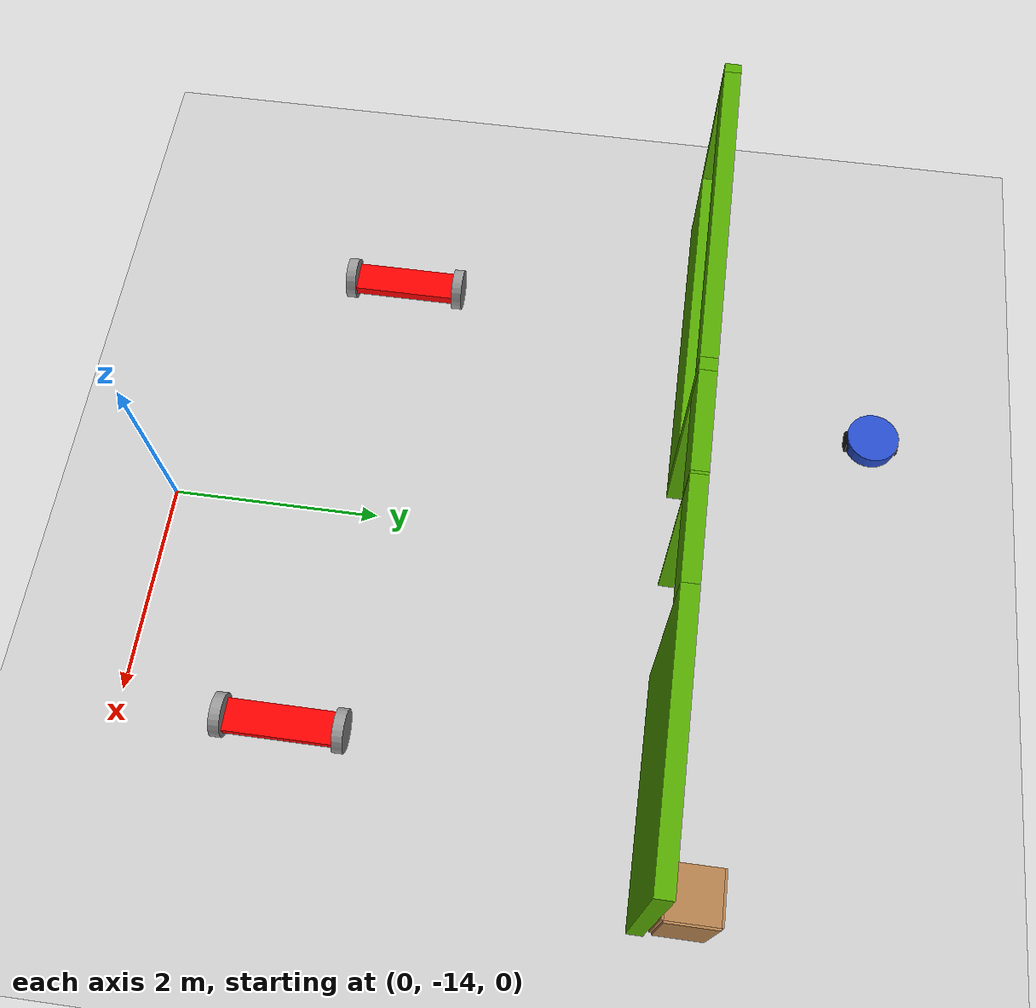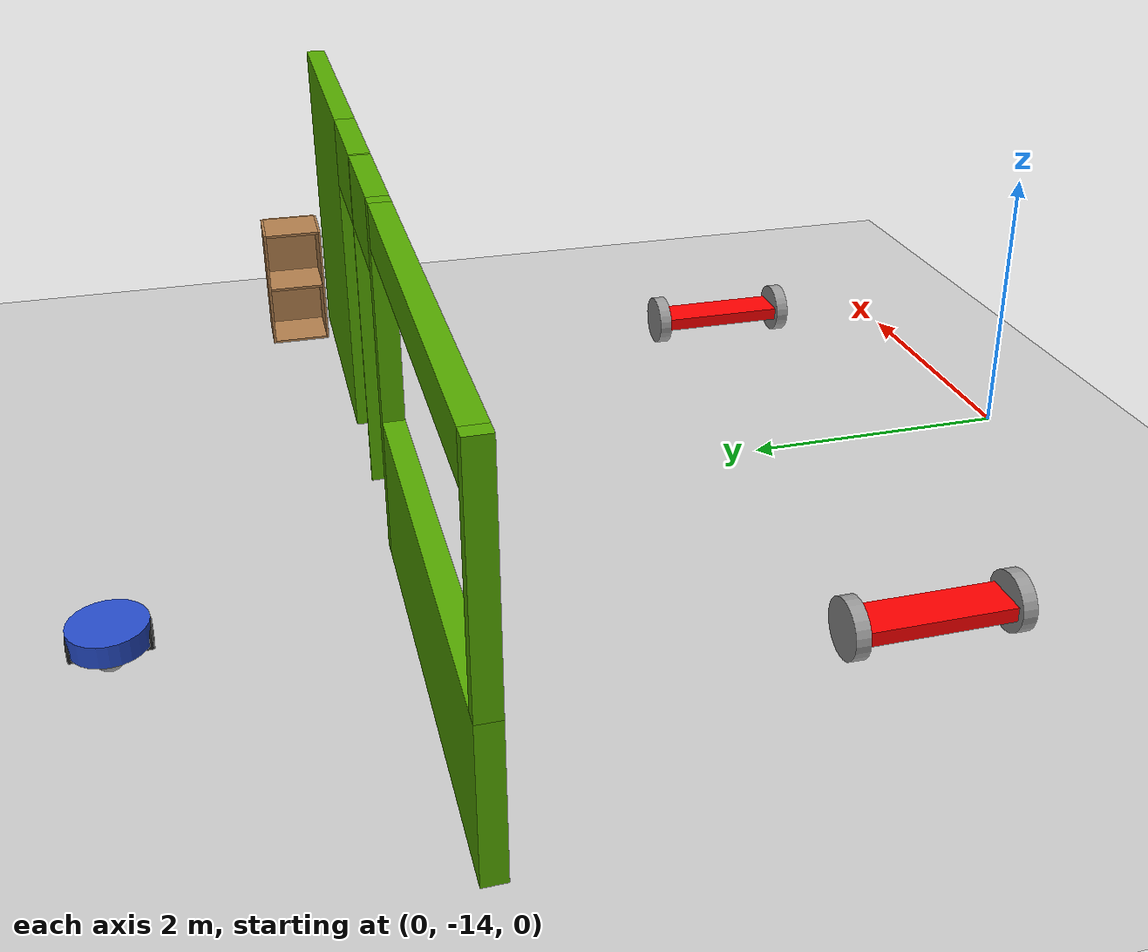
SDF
<sdf version="1.6">
 <world name="default">
  <model name="ground_plane">
   <static>1</static>
   <link name="link">
    <collision name="collision">
     <geometry><plane><normal>0 0 1</normal><size>100 100</size></plane></geometry>
     <surface><friction><ode><mu>100</mu><mu2>50</mu2></ode></friction></surface>
    </collision>
    <visual name="visual">
     <cast_shadows>0</cast_shadows>
     <geometry><plane><normal>0 0 1</normal><size>100 100</size></plane></geometry>
     <material>
      <script><uri>file://media/materials/scripts/gazebo.material</uri><name>Gazebo/Grey</name></script>
     </material>
    </visual>
   </link>
  </model>
  <model name="1floorHouse">
   <link name="Wall_292">
    <pose>-4.3959 -4.53994 0 0 0 -3.14158</pose>
    <visual name="Wall_292_Visual_0">
     <pose>-2.52118 0 1.25 0 -0 0</pose>
     <geometry><box><size>2.25743 0.15 2.5</size></box></geometry>
     <material>
      <script><uri>file://media/materials/scripts/gazebo.material</uri><name>Gazebo/Grey</name></script>
      <ambient>0.333333 0.666667 0 1</ambient>
      <diffuse>0.7 0.7 0.7 1</diffuse>
      <specular>0.01 0.01 0.01 1</specular>
      <emissive>0 0 0 1</emissive>
     </material>
    </visual>
    <visual name="Wall_292_Visual_1">
     <pose>-0.479853 0 1.25 0 -0 0</pose>
     <geometry><box><size>0.025221 0.15 2.5</size></box></geometry>
     <material>
      <script><uri>file://media/materials/scripts/gazebo.material</uri><name>Gazebo/Grey</name></script>
      <ambient>0.333333 0.666667 0 1</ambient>
      <diffuse>0.7 0.7 0.7 1</diffuse>
      <specular>0.01 0.01 0.01 1</specular>
      <emissive>0 0 0 1</emissive>
     </material>
    </visual>
    <visual name="Wall_292_Visual_2">
     <pose>0.492301 0 1.25 0 -0 0</pose>
     <geometry><box><size>0.119086 0.15 2.5</size></box></geometry>
     <material>
      <script><uri>file://media/materials/scripts/gazebo.material</uri><name>Gazebo/Grey</name></script>
      <ambient>0.333333 0.666667 0 1</ambient>
      <diffuse>0.7 0.7 0.7 1</diffuse>
      <specular>0.01 0.01 0.01 1</specular>
      <emissive>0 0 0 1</emissive>
     </material>
    </visual>
    <visual name="Wall_292_Visual_3">
     <pose>2.10087 0 0.5 0 -0 0</pose>
     <geometry><box><size>3.09805 0.15 1</size></box></geometry>
     <material>
      <script><uri>file://media/materials/scripts/gazebo.material</uri><name>Gazebo/Grey</name></script>
      <ambient>0.333333 0.666667 0 1</ambient>
      <diffuse>0.7 0.7 0.7 1</diffuse>
      <specular>0.01 0.01 0.01 1</specular>
      <emissive>0 0 0 1</emissive>
     </material>
    </visual>
    <visual name="Wall_292_Visual_4">
     <pose>3.60087 0 1.75 0 -0 0</pose>
     <geometry><box><size>0.098047 0.15 1.5</size></box></geometry>
     <material>
      <script><uri>file://media/materials/scripts/gazebo.material</uri><name>Gazebo/Grey</name></script>
      <ambient>0.333333 0.666667 0 1</ambient>
      <diffuse>0.7 0.7 0.7 1</diffuse>
      <specular>0.01 0.01 0.01 1</specular>
      <emissive>0 0 0 1</emissive>
     </material>
    </visual>
    <visual name="Wall_292_Visual_5">
     <pose>-0.942463 0 2.25 0 -0 0</pose>
     <geometry><box><size>0.9 0.15 0.5</size></box></geometry>
     <material>
      <script><uri>file://media/materials/scripts/gazebo.material</uri><name>Gazebo/Grey</name></script>
      <ambient>0.333333 0.666667 0 1</ambient>
      <diffuse>0.7 0.7 0.7 1</diffuse>
      <specular>0.01 0.01 0.01 1</specular>
      <emissive>0 0 0 1</emissive>
     </material>
    </visual>
    <visual name="Wall_292_Visual_6">
     <pose>-0.017242 0 2.25 0 -0 0</pose>
     <geometry><box><size>0.9 0.15 0.5</size></box></geometry>
     <material>
      <script><uri>file://media/materials/scripts/gazebo.material</uri><name>Gazebo/Grey</name></script>
      <ambient>0.333333 0.666667 0 1</ambient>
      <diffuse>0.7 0.7 0.7 1</diffuse>
      <specular>0.01 0.01 0.01 1</specular>
      <emissive>0 0 0 1</emissive>
     </material>
    </visual>
    <visual name="Wall_292_Visual_7">
     <pose>2.05184 0 2.35 0 -0 0</pose>
     <geometry><box><size>3 0.15 0.3</size></box></geometry>
     <material>
      <script><uri>file://media/materials/scripts/gazebo.material</uri><name>Gazebo/Grey</name></script>
      <ambient>0.333333 0.666667 0 1</ambient>
      <diffuse>0.7 0.7 0.7 1</diffuse>
      <specular>0.01 0.01 0.01 1</specular>
      <emissive>0 0 0 1</emissive>
     </material>
    </visual>
    <collision name="Wall_292_Collision_1">
     <pose>-0.479853 0 1.25 0 -0 0</pose>
     <geometry><box><size>0.025221 0.15 2.5</size></box></geometry>
     <surface>
      <friction>
       <ode><mu>1</mu><mu2>1</mu2><fdir1>0 0 0</fdir1><slip1>0</slip1><slip2>0</slip2></ode>
       <torsional>
        <coefficient>1</coefficient>
        <patch_radius>0</patch_radius>
        <surface_radius>0</surface_radius>
        <use_patch_radius>1</use_patch_radius>
        <ode><slip>0</slip></ode>
       </torsional>
      </friction>
      <bounce><restitution_coefficient>0</restitution_coefficient><threshold>1e+06</threshold></bounce>
      <contact>
       <collide_without_contact>0</collide_without_contact>
       <collide_without_contact_bitmask>1</collide_without_contact_bitmask>
       <collide_bitmask>1</collide_bitmask>
       <ode>
        <soft_cfm>0</soft_cfm>
        <soft_erp>0.2</soft_erp>
        <kp>1e+13</kp>
        <kd>1</kd>
        <max_vel>0.01</max_vel>
        <min_depth>0</min_depth>
       </ode>
       <bullet>
        <split_impulse>1</split_impulse>
        <split_impulse_penetration_threshold>-0.01</split_impulse_penetration_threshold>
        <soft_cfm>0</soft_cfm>
        <soft_erp>0.2</soft_erp>
        <kp>1e+13</kp>
        <kd>1</kd>
       </bullet>
      </contact>
     </surface>
    </collision>
    <collision name="Wall_292_Collision_0">
     <pose>-2.52118 0 1.25 0 -0 0</pose>
     <geometry><box><size>2.25743 0.15 2.5</size></box></geometry>
     <surface>
      <friction>
       <ode><mu>1</mu><mu2>1</mu2><fdir1>0 0 0</fdir1><slip1>0</slip1><slip2>0</slip2></ode>
       <torsional>
        <coefficient>1</coefficient>
        <patch_radius>0</patch_radius>
        <surface_radius>0</surface_radius>
        <use_patch_radius>1</use_patch_radius>
        <ode><slip>0</slip></ode>
       </torsional>
      </friction>
      <bounce><restitution_coefficient>0</restitution_coefficient><threshold>1e+06</threshold></bounce>
      <contact>
       <collide_without_contact>0</collide_without_contact>
       <collide_without_contact_bitmask>1</collide_without_contact_bitmask>
       <collide_bitmask>1</collide_bitmask>
       <ode>
        <soft_cfm>0</soft_cfm>
        <soft_erp>0.2</soft_erp>
        <kp>1e+13</kp>
        <kd>1</kd>
        <max_vel>0.01</max_vel>
        <min_depth>0</min_depth>
       </ode>
       <bullet>
        <split_impulse>1</split_impulse>
        <split_impulse_penetration_threshold>-0.01</split_impulse_penetration_threshold>
        <soft_cfm>0</soft_cfm>
        <soft_erp>0.2</soft_erp>
        <kp>1e+13</kp>
        <kd>1</kd>
       </bullet>
      </contact>
     </surface>
    </collision>
    <collision name="Wall_292_Collision_2">
     <pose>0.492301 0 1.25 0 -0 0</pose>
     <geometry><box><size>0.119086 0.15 2.5</size></box></geometry>
     <surface>
      <friction>
       <ode><mu>1</mu><mu2>1</mu2><fdir1>0 0 0</fdir1><slip1>0</slip1><slip2>0</slip2></ode>
       <torsional>
        <coefficient>1</coefficient>
        <patch_radius>0</patch_radius>
        <surface_radius>0</surface_radius>
        <use_patch_radius>1</use_patch_radius>
        <ode><slip>0</slip></ode>
       </torsional>
      </friction>
      <bounce><restitution_coefficient>0</restitution_coefficient><threshold>1e+06</threshold></bounce>
      <contact>
       <collide_without_contact>0</collide_without_contact>
       <collide_without_contact_bitmask>1</collide_without_contact_bitmask>
       <collide_bitmask>1</collide_bitmask>
       <ode>
        <soft_cfm>0</soft_cfm>
        <soft_erp>0.2</soft_erp>
        <kp>1e+13</kp>
        <kd>1</kd>
        <max_vel>0.01</max_vel>
        <min_depth>0</min_depth>
       </ode>
       <bullet>
        <split_impulse>1</split_impulse>
        <split_impulse_penetration_threshold>-0.01</split_impulse_penetration_threshold>
        <soft_cfm>0</soft_cfm>
        <soft_erp>0.2</soft_erp>
        <kp>1e+13</kp>
        <kd>1</kd>
       </bullet>
      </contact>
     </surface>
    </collision>
    <collision name="Wall_292_Collision_3">
     <pose>2.10087 0 0.5 0 -0 0</pose>
     <geometry><box><size>3.09805 0.15 1</size></box></geometry>
     <surface>
      <friction>
       <ode><mu>1</mu><mu2>1</mu2><fdir1>0 0 0</fdir1><slip1>0</slip1><slip2>0</slip2></ode>
       <torsional>
        <coefficient>1</coefficient>
        <patch_radius>0</patch_radius>
        <surface_radius>0</surface_radius>
        <use_patch_radius>1</use_patch_radius>
        <ode><slip>0</slip></ode>
       </torsional>
      </friction>
      <bounce><restitution_coefficient>0</restitution_coefficient><threshold>1e+06</threshold></bounce>
      <contact>
       <collide_without_contact>0</collide_without_contact>
       <collide_without_contact_bitmask>1</collide_without_contact_bitmask>
       <collide_bitmask>1</collide_bitmask>
       <ode>
        <soft_cfm>0</soft_cfm>
        <soft_erp>0.2</soft_erp>
        <kp>1e+13</kp>
        <kd>1</kd>
        <max_vel>0.01</max_vel>
        <min_depth>0</min_depth>
       </ode>
       <bullet>
        <split_impulse>1</split_impulse>
        <split_impulse_penetration_threshold>-0.01</split_impulse_penetration_threshold>
        <soft_cfm>0</soft_cfm>
        <soft_erp>0.2</soft_erp>
        <kp>1e+13</kp>
        <kd>1</kd>
       </bullet>
      </contact>
     </surface>
    </collision>
    <collision name="Wall_292_Collision_4">
     <pose>3.60087 0 1.75 0 -0 0</pose>
     <geometry><box><size>0.098047 0.15 1.5</size></box></geometry>
     <surface>
      <friction>
       <ode><mu>1</mu><mu2>1</mu2><fdir1>0 0 0</fdir1><slip1>0</slip1><slip2>0</slip2></ode>
       <torsional>
        <coefficient>1</coefficient>
        <patch_radius>0</patch_radius>
        <surface_radius>0</surface_radius>
        <use_patch_radius>1</use_patch_radius>
        <ode><slip>0</slip></ode>
       </torsional>
      </friction>
      <bounce><restitution_coefficient>0</restitution_coefficient><threshold>1e+06</threshold></bounce>
      <contact>
       <collide_without_contact>0</collide_without_contact>
       <collide_without_contact_bitmask>1</collide_without_contact_bitmask>
       <collide_bitmask>1</collide_bitmask>
       <ode>
        <soft_cfm>0</soft_cfm>
        <soft_erp>0.2</soft_erp>
        <kp>1e+13</kp>
        <kd>1</kd>
        <max_vel>0.01</max_vel>
        <min_depth>0</min_depth>
       </ode>
       <bullet>
        <split_impulse>1</split_impulse>
        <split_impulse_penetration_threshold>-0.01</split_impulse_penetration_threshold>
        <soft_cfm>0</soft_cfm>
        <soft_erp>0.2</soft_erp>
        <kp>1e+13</kp>
        <kd>1</kd>
       </bullet>
      </contact>
     </surface>
    </collision>
    <collision name="Wall_292_Collision_5">
     <pose>-0.942463 0 2.25 0 -0 0</pose>
     <geometry><box><size>0.9 0.15 0.5</size></box></geometry>
     <surface>
      <friction>
       <ode><mu>1</mu><mu2>1</mu2><fdir1>0 0 0</fdir1><slip1>0</slip1><slip2>0</slip2></ode>
       <torsional>
        <coefficient>1</coefficient>
        <patch_radius>0</patch_radius>
        <surface_radius>0</surface_radius>
        <use_patch_radius>1</use_patch_radius>
        <ode><slip>0</slip></ode>
       </torsional>
      </friction>
      <bounce><restitution_coefficient>0</restitution_coefficient><threshold>1e+06</threshold></bounce>
      <contact>
       <collide_without_contact>0</collide_without_contact>
       <collide_without_contact_bitmask>1</collide_without_contact_bitmask>
       <collide_bitmask>1</collide_bitmask>
       <ode>
        <soft_cfm>0</soft_cfm>
        <soft_erp>0.2</soft_erp>
        <kp>1e+13</kp>
        <kd>1</kd>
        <max_vel>0.01</max_vel>
        <min_depth>0</min_depth>
       </ode>
       <bullet>
        <split_impulse>1</split_impulse>
        <split_impulse_penetration_threshold>-0.01</split_impulse_penetration_threshold>
        <soft_cfm>0</soft_cfm>
        <soft_erp>0.2</soft_erp>
        <kp>1e+13</kp>
        <kd>1</kd>
       </bullet>
      </contact>
     </surface>
    </collision>
    <collision name="Wall_292_Collision_7">
     <pose>2.05184 0 2.35 0 -0 0</pose>
     <geometry><box><size>3 0.15 0.3</size></box></geometry>
     <surface>
      <friction>
       <ode><mu>1</mu><mu2>1</mu2><fdir1>0 0 0</fdir1><slip1>0</slip1><slip2>0</slip2></ode>
       <torsional>
        <coefficient>1</coefficient>
        <patch_radius>0</patch_radius>
        <surface_radius>0</surface_radius>
        <use_patch_radius>1</use_patch_radius>
        <ode><slip>0</slip></ode>
       </torsional>
      </friction>
      <bounce><restitution_coefficient>0</restitution_coefficient><threshold>1e+06</threshold></bounce>
      <contact>
       <collide_without_contact>0</collide_without_contact>
       <collide_without_contact_bitmask>1</collide_without_contact_bitmask>
       <collide_bitmask>1</collide_bitmask>
       <ode>
        <soft_cfm>0</soft_cfm>
        <soft_erp>0.2</soft_erp>
        <kp>1e+13</kp>
        <kd>1</kd>
        <max_vel>0.01</max_vel>
        <min_depth>0</min_depth>
       </ode>
       <bullet>
        <split_impulse>1</split_impulse>
        <split_impulse_penetration_threshold>-0.01</split_impulse_penetration_threshold>
        <soft_cfm>0</soft_cfm>
        <soft_erp>0.2</soft_erp>
        <kp>1e+13</kp>
        <kd>1</kd>
       </bullet>
      </contact>
     </surface>
    </collision>
    <collision name="Wall_292_Collision_6">
     <pose>-0.017242 0 2.25 0 -0 0</pose>
     <geometry><box><size>0.9 0.15 0.5</size></box></geometry>
     <surface>
      <friction>
       <ode><mu>1</mu><mu2>1</mu2><fdir1>0 0 0</fdir1><slip1>0</slip1><slip2>0</slip2></ode>
       <torsional>
        <coefficient>1</coefficient>
        <patch_radius>0</patch_radius>
        <surface_radius>0</surface_radius>
        <use_patch_radius>1</use_patch_radius>
        <ode><slip>0</slip></ode>
       </torsional>
      </friction>
      <bounce><restitution_coefficient>0</restitution_coefficient><threshold>1e+06</threshold></bounce>
      <contact>
       <collide_without_contact>0</collide_without_contact>
       <collide_without_contact_bitmask>1</collide_without_contact_bitmask>
       <collide_bitmask>1</collide_bitmask>
       <ode>
        <soft_cfm>0</soft_cfm>
        <soft_erp>0.2</soft_erp>
        <kp>1e+13</kp>
        <kd>1</kd>
        <max_vel>0.01</max_vel>
        <min_depth>0</min_depth>
       </ode>
       <bullet>
        <split_impulse>1</split_impulse>
        <split_impulse_penetration_threshold>-0.01</split_impulse_penetration_threshold>
        <soft_cfm>0</soft_cfm>
        <soft_erp>0.2</soft_erp>
        <kp>1e+13</kp>
        <kd>1</kd>
       </bullet>
      </contact>
     </surface>
    </collision>
   </link>
   <static>1</static>
   <pose>4.2533 -4.6154 0 0 -0 0</pose>
  </model>
  <model name="Tartufino_0">
   <link name="link_0">
    <pose>0 -0 0.04 0 -0 0</pose>
    <inertial>
     <mass>1</mass>
     <inertia><ixx>0.145833</ixx><ixy>0</ixy><ixz>0</ixz><iyy>0.145833</iyy><iyz>0</iyz><izz>0.125</izz></inertia>
    </inertial>
    <visual name="visual">
     <geometry><cylinder><radius>0.25</radius><length>0.15</length></cylinder></geometry>
     <material>
      <lighting>1</lighting>
      <script><uri>file://media/materials/scripts/gazebo.material</uri><name>Gazebo/Blue</name></script>
      <ambient>0.13 0.44 0.7 1</ambient>
      <diffuse>0 0 0 1</diffuse>
      <specular>0.1 0.1 0.1 1</specular>
      <emissive>0 0 0 1</emissive>
      <shader type="vertex"><normal_map>__default__</normal_map></shader>
     </material>
    </visual>
    <collision name="collision">
     <geometry><cylinder><radius>0.25</radius><length>0.15</length></cylinder></geometry>
     <surface>
      <friction>
       <ode><mu>1</mu><mu2>1</mu2><fdir1>0 0 0</fdir1><slip1>0</slip1><slip2>0</slip2></ode>
       <torsional>
        <coefficient>1</coefficient>
        <patch_radius>0</patch_radius>
        <surface_radius>0</surface_radius>
        <use_patch_radius>1</use_patch_radius>
        <ode><slip>0</slip></ode>
       </torsional>
      </friction>
      <bounce><restitution_coefficient>0</restitution_coefficient><threshold>1e+06</threshold></bounce>
      <contact>
       <collide_without_contact>0</collide_without_contact>
       <collide_without_contact_bitmask>1</collide_without_contact_bitmask>
       <collide_bitmask>1</collide_bitmask>
       <ode>
        <soft_cfm>0</soft_cfm>
        <soft_erp>0.2</soft_erp>
        <kp>1e+13</kp>
        <kd>1</kd>
        <max_vel>0.01</max_vel>
        <min_depth>0</min_depth>
       </ode>
       <bullet>
        <split_impulse>1</split_impulse>
        <split_impulse_penetration_threshold>-0.01</split_impulse_penetration_threshold>
        <soft_cfm>0</soft_cfm>
        <soft_erp>0.2</soft_erp>
        <kp>1e+13</kp>
        <kd>1</kd>
       </bullet>
      </contact>
     </surface>
    </collision>
   </link>
   <link name="link_1">
    <pose>0 0.2 -0.01 0 -0 0</pose>
    <inertial>
     <mass>1</mass>
     <inertia><ixx>0.145833</ixx><ixy>0</ixy><ixz>0</ixz><iyy>0.145833</iyy><iyz>0</iyz><izz>0.125</izz></inertia>
    </inertial>
    <visual name="visual">
     <pose>0 0 0 1.5708 -0 0</pose>
     <geometry><cylinder><radius>0.1</radius><length>0.1</length></cylinder></geometry>
     <material>
      <lighting>1</lighting>
      <script><uri>file://media/materials/scripts/gazebo.material</uri><name>Gazebo/Black</name></script>
      <ambient>0 0 0 1</ambient>
      <diffuse>0 0 0 1</diffuse>
      <specular>0.1 0.1 0.1 1</specular>
      <emissive>0 0 0 1</emissive>
      <shader type="vertex"><normal_map>__default__</normal_map></shader>
     </material>
    </visual>
    <collision name="collision">
     <pose>0 0 0 1.5708 -0 0</pose>
     <geometry><cylinder><radius>0.1</radius><length>0.1</length></cylinder></geometry>
     <surface>
      <friction>
       <ode><mu>1</mu><mu2>1</mu2><fdir1>0 0 0</fdir1><slip1>0</slip1><slip2>0</slip2></ode>
       <torsional>
        <coefficient>1</coefficient>
        <patch_radius>0</patch_radius>
        <surface_radius>0</surface_radius>
        <use_patch_radius>1</use_patch_radius>
        <ode><slip>0</slip></ode>
       </torsional>
      </friction>
      <bounce><restitution_coefficient>0</restitution_coefficient><threshold>1e+06</threshold></bounce>
      <contact>
       <collide_without_contact>0</collide_without_contact>
       <collide_without_contact_bitmask>1</collide_without_contact_bitmask>
       <collide_bitmask>1</collide_bitmask>
       <ode>
        <soft_cfm>0</soft_cfm>
        <soft_erp>0.2</soft_erp>
        <kp>1e+13</kp>
        <kd>1</kd>
        <max_vel>0.01</max_vel>
        <min_depth>0</min_depth>
       </ode>
       <bullet>
        <split_impulse>1</split_impulse>
        <split_impulse_penetration_threshold>-0.01</split_impulse_penetration_threshold>
        <soft_cfm>0</soft_cfm>
        <soft_erp>0.2</soft_erp>
        <kp>1e+13</kp>
        <kd>1</kd>
       </bullet>
      </contact>
     </surface>
    </collision>
   </link>
   <link name="link_1_clone">
    <pose>-0 -0.2 -0.01 0 -0 0</pose>
    <inertial>
     <mass>1</mass>
     <inertia><ixx>0.145833</ixx><ixy>0</ixy><ixz>0</ixz><iyy>0.145833</iyy><iyz>0</iyz><izz>0.125</izz></inertia>
    </inertial>
    <visual name="visual">
     <pose>0 0 0 1.5708 -0 0</pose>
     <geometry><cylinder><radius>0.1</radius><length>0.1</length></cylinder></geometry>
     <material>
      <lighting>1</lighting>
      <script><uri>file://media/materials/scripts/gazebo.material</uri><name>Gazebo/Black</name></script>
      <ambient>0 0 0 1</ambient>
      <diffuse>0 0 0 1</diffuse>
      <specular>0.1 0.1 0.1 1</specular>
      <emissive>0 0 0 1</emissive>
      <shader type="vertex"><normal_map>__default__</normal_map></shader>
     </material>
    </visual>
    <collision name="collision">
     <pose>0 0 0 1.5708 -0 0</pose>
     <geometry><cylinder><radius>0.1</radius><length>0.1</length></cylinder></geometry>
     <surface>
      <friction>
       <ode><mu>1</mu><mu2>1</mu2><fdir1>0 0 0</fdir1><slip1>0</slip1><slip2>0</slip2></ode>
       <torsional>
        <coefficient>1</coefficient>
        <patch_radius>0</patch_radius>
        <surface_radius>0</surface_radius>
        <use_patch_radius>1</use_patch_radius>
        <ode><slip>0</slip></ode>
       </torsional>
      </friction>
      <bounce><restitution_coefficient>0</restitution_coefficient><threshold>1e+06</threshold></bounce>
      <contact>
       <collide_without_contact>0</collide_without_contact>
       <collide_without_contact_bitmask>1</collide_without_contact_bitmask>
       <collide_bitmask>1</collide_bitmask>
       <ode>
        <soft_cfm>0</soft_cfm>
        <soft_erp>0.2</soft_erp>
        <kp>1e+13</kp>
        <kd>1</kd>
        <max_vel>0.01</max_vel>
        <min_depth>0</min_depth>
       </ode>
       <bullet>
        <split_impulse>1</split_impulse>
        <split_impulse_penetration_threshold>-0.01</split_impulse_penetration_threshold>
        <soft_cfm>0</soft_cfm>
        <soft_erp>0.2</soft_erp>
        <kp>1e+13</kp>
        <kd>1</kd>
       </bullet>
      </contact>
     </surface>
    </collision>
   </link>
   <link name="link_2">
    <pose>-0.15 0 -0.01 0 -0 0</pose>
    <inertial>
     <mass>1</mass>
     <inertia><ixx>0.1</ixx><ixy>0</ixy><ixz>0</ixz><iyy>0.1</iyy><iyz>0</iyz><izz>0.1</izz></inertia>
    </inertial>
    <visual name="visual">
     <geometry><sphere><radius>0.1</radius></sphere></geometry>
     <material>
      <lighting>1</lighting>
      <script><uri>file://media/materials/scripts/gazebo.material</uri><name>Gazebo/Grey</name></script>
      <ambient>0.3 0.3 0.3 1</ambient>
      <diffuse>0.7 0.7 0.7 1</diffuse>
      <specular>0.01 0.01 0.01 1</specular>
      <emissive>0 0 0 1</emissive>
      <shader type="vertex"><normal_map>__default__</normal_map></shader>
     </material>
    </visual>
    <collision name="collision">
     <geometry><sphere><radius>0.1</radius></sphere></geometry>
     <surface>
      <friction>
       <ode><mu>0</mu><mu2>0</mu2><fdir1>0 0 0</fdir1><slip1>1</slip1><slip2>1</slip2></ode>
       <torsional>
        <coefficient>1</coefficient>
        <patch_radius>0</patch_radius>
        <surface_radius>0</surface_radius>
        <use_patch_radius>1</use_patch_radius>
        <ode><slip>0</slip></ode>
       </torsional>
      </friction>
      <bounce><restitution_coefficient>0</restitution_coefficient><threshold>1e+06</threshold></bounce>
      <contact>
       <collide_without_contact>0</collide_without_contact>
       <collide_without_contact_bitmask>1</collide_without_contact_bitmask>
       <collide_bitmask>1</collide_bitmask>
       <ode>
        <soft_cfm>0</soft_cfm>
        <soft_erp>0.2</soft_erp>
        <kp>1e+13</kp>
        <kd>1</kd>
        <max_vel>0.01</max_vel>
        <min_depth>0</min_depth>
       </ode>
       <bullet>
        <split_impulse>1</split_impulse>
        <split_impulse_penetration_threshold>-0.01</split_impulse_penetration_threshold>
        <soft_cfm>0</soft_cfm>
        <soft_erp>0.2</soft_erp>
        <kp>1e+13</kp>
        <kd>1</kd>
       </bullet>
      </contact>
     </surface>
    </collision>
   </link>
   <link name="link_2_clone">
    <pose>0.15 0 -0.01 0 -0 0</pose>
    <inertial>
     <mass>1</mass>
     <inertia><ixx>0.1</ixx><ixy>0</ixy><ixz>0</ixz><iyy>0.1</iyy><iyz>0</iyz><izz>0.1</izz></inertia>
    </inertial>
    <visual name="visual">
     <geometry><sphere><radius>0.1</radius></sphere></geometry>
     <material>
      <lighting>1</lighting>
      <script><uri>file://media/materials/scripts/gazebo.material</uri><name>Gazebo/Grey</name></script>
      <ambient>0.3 0.3 0.3 1</ambient>
      <diffuse>0.7 0.7 0.7 1</diffuse>
      <specular>0.01 0.01 0.01 1</specular>
      <emissive>0 0 0 1</emissive>
      <shader type="vertex"><normal_map>__default__</normal_map></shader>
     </material>
    </visual>
    <collision name="collision">
     <geometry><sphere><radius>0.1</radius></sphere></geometry>
     <surface>
      <friction>
       <ode><mu>0</mu><mu2>0</mu2><fdir1>0 0 0</fdir1><slip1>1</slip1><slip2>1</slip2></ode>
       <torsional>
        <coefficient>1</coefficient>
        <patch_radius>0</patch_radius>
        <surface_radius>0</surface_radius>
        <use_patch_radius>1</use_patch_radius>
        <ode><slip>0</slip></ode>
       </torsional>
      </friction>
      <bounce><restitution_coefficient>0</restitution_coefficient><threshold>1e+06</threshold></bounce>
      <contact>
       <collide_without_contact>0</collide_without_contact>
       <collide_without_contact_bitmask>1</collide_without_contact_bitmask>
       <collide_bitmask>1</collide_bitmask>
       <ode>
        <soft_cfm>0</soft_cfm>
        <soft_erp>0.2</soft_erp>
        <kp>1e+13</kp>
        <kd>1</kd>
        <max_vel>0.01</max_vel>
        <min_depth>0</min_depth>
       </ode>
       <bullet>
        <split_impulse>1</split_impulse>
        <split_impulse_penetration_threshold>-0.01</split_impulse_penetration_threshold>
        <soft_cfm>0</soft_cfm>
        <soft_erp>0.2</soft_erp>
        <kp>1e+13</kp>
        <kd>1</kd>
       </bullet>
      </contact>
     </surface>
    </collision>
   </link>
   <joint name="link_0_JOINT_1" type="revolute">
    <parent>link_0</parent>
    <child>link_1</child>
    <axis>
     <xyz>0 -1 0</xyz>
     <use_parent_model_frame>0</use_parent_model_frame>
     <limit>
      <lower>-1.79769e+308</lower>
      <upper>1.79769e+308</upper>
      <effort>-1</effort>
      <velocity>-1</velocity>
     </limit>
     <dynamics>
      <spring_reference>0</spring_reference>
      <spring_stiffness>0</spring_stiffness>
      <damping>0</damping>
      <friction>0</friction>
     </dynamics>
    </axis>
    <physics>
     <ode><limit><cfm>0</cfm><erp>0.2</erp></limit><suspension><cfm>0</cfm><erp>0.2</erp></suspension></ode>
    </physics>
   </joint>
   <joint name="link_0_JOINT_2" type="revolute">
    <parent>link_0</parent>
    <child>link_1_clone</child>
    <pose>0 -0.01 0 0 -0 0</pose>
    <axis>
     <xyz>0 1 0</xyz>
     <use_parent_model_frame>0</use_parent_model_frame>
     <limit>
      <lower>-1.79769e+308</lower>
      <upper>1.79769e+308</upper>
      <effort>-1</effort>
      <velocity>-1</velocity>
     </limit>
     <dynamics>
      <spring_reference>0</spring_reference>
      <spring_stiffness>0</spring_stiffness>
      <damping>0</damping>
      <friction>0</friction>
     </dynamics>
    </axis>
    <physics>
     <ode><limit><cfm>0</cfm><erp>0.2</erp></limit><suspension><cfm>0</cfm><erp>0.2</erp></suspension></ode>
    </physics>
   </joint>
   <joint name="link_0_JOINT_4" type="fixed">
    <parent>link_0</parent>
    <child>link_2</child>
    <physics>
     <ode><limit><cfm>0</cfm><erp>0.2</erp></limit><suspension><cfm>0</cfm><erp>0.2</erp></suspension></ode>
    </physics>
   </joint>
   <joint name="link_0_JOINT_5" type="fixed">
    <parent>link_0</parent>
    <child>link_2_clone</child>
    <pose>0 0 -0.01 0 -0 0</pose>
    <physics>
     <ode><limit><cfm>0</cfm><erp>0.2</erp></limit><suspension><cfm>0</cfm><erp>0.2</erp></suspension></ode>
    </physics>
   </joint>
   <static>0</static>
   <pose>-1.37776 -7.28687 0.12 -1e-06 0 0.041152</pose>
  </model>
  <model name="cabinet">
   <static>1</static>
   <link name="cabinet_bottom_plate">
    <inertial>
     <pose>0 0 -1 0 -0 0</pose>
     <inertia><ixx>2.05</ixx><ixy>0</ixy><ixz>0</ixz><iyy>2.05</iyy><iyz>0</iyz><izz>2.05</izz></inertia>
     <mass>25</mass>
    </inertial>
    <collision name="cabinet_bottom_plate_geom">
     <pose>0 0 0.01 0 -0 0</pose>
     <geometry><box><size>0.45 0.45 0.02</size></box></geometry>
    </collision>
    <visual name="cabinet_bottom_plate_geom_visual">
     <pose>0 0 0.01 0 -0 0</pose>
     <geometry><box><size>0.45 0.45 0.02</size></box></geometry>
     <material>
      <script><uri>file://media/materials/scripts/gazebo.material</uri><name>Gazebo/Wood</name></script>
     </material>
    </visual>
    <collision name="cabinet_bottom_plate_geom_cabinet_back_plate">
     <pose>0.235 0 0.51 0 -0 0</pose>
     <geometry><box><size>0.02 0.45 1.02</size></box></geometry>
    </collision>
    <visual name="cabinet_bottom_plate_geom_cabinet_back_plate_visual">
     <pose>0.235 0 0.51 0 -0 0</pose>
     <geometry><box><size>0.02 0.45 1.02</size></box></geometry>
     <material>
      <script><uri>file://media/materials/scripts/gazebo.material</uri><name>Gazebo/Wood</name></script>
     </material>
    </visual>
    <collision name="cabinet_bottom_plate_geom_cabinet_left_plate">
     <pose>0 0.235 0.51 0 -0 0</pose>
     <geometry><box><size>0.45 0.02 1.02</size></box></geometry>
    </collision>
    <visual name="cabinet_bottom_plate_geom_cabinet_left_plate_visual">
     <pose>0 0.235 0.51 0 -0 0</pose>
     <geometry><box><size>0.45 0.02 1.02</size></box></geometry>
     <material>
      <script><uri>file://media/materials/scripts/gazebo.material</uri><name>Gazebo/Wood</name></script>
     </material>
    </visual>
    <collision name="cabinet_bottom_plate_geom_cabinet_middle_plate">
     <pose>0 0 0.51 0 -0 0</pose>
     <geometry><box><size>0.45 0.45 0.02</size></box></geometry>
    </collision>
    <visual name="cabinet_bottom_plate_geom_cabinet_middle_plate_visual">
     <pose>0 0 0.51 0 -0 0</pose>
     <geometry><box><size>0.45 0.45 0.02</size></box></geometry>
     <material>
      <script><uri>file://media/materials/scripts/gazebo.material</uri><name>Gazebo/Wood</name></script>
     </material>
    </visual>
    <collision name="cabinet_bottom_plate_geom_cabinet_right_plate">
     <pose>0 -0.235 0.51 0 -0 0</pose>
     <geometry><box><size>0.45 0.02 1.02</size></box></geometry>
    </collision>
    <visual name="cabinet_bottom_plate_geom_cabinet_right_plate_visual">
     <pose>0 -0.235 0.51 0 -0 0</pose>
     <geometry><box><size>0.45 0.02 1.02</size></box></geometry>
     <material>
      <script><uri>file://media/materials/scripts/gazebo.material</uri><name>Gazebo/Wood</name></script>
     </material>
    </visual>
    <collision name="cabinet_bottom_plate_geom_cabinet_top_plate">
     <pose>0 0 1.01 0 -0 0</pose>
     <geometry><box><size>0.45 0.45 0.02</size></box></geometry>
    </collision>
    <visual name="cabinet_bottom_plate_geom_cabinet_top_plate_visual">
     <pose>0 0 1.01 0 -0 0</pose>
     <geometry><box><size>0.45 0.45 0.02</size></box></geometry>
     <material>
      <script><uri>file://media/materials/scripts/gazebo.material</uri><name>Gazebo/Wood</name></script>
     </material>
    </visual>
   </link>
   <pose>3.24338 -8.78854 0 0 -0 0</pose>
  </model>
  <model name="robot_0">
   <link name="link_1">
    <inertial>
     <mass>1</mass>
     <inertia>
      <ixx>0.166667</ixx>
      <ixy>0</ixy>
      <ixz>0</ixz>
      <iyy>0.166667</iyy>
      <iyz>0</iyz>
      <izz>0.166667</izz>
     </inertia>
    </inertial>
    <visual name="visual">
     <geometry><box><size>0.3 1 0.1</size></box></geometry>
     <material>
      <lighting>1</lighting>
      <script><uri>file://media/materials/scripts/gazebo.material</uri><name>Gazebo/Grey</name></script>
      <ambient>1 0 0 1</ambient>
      <diffuse>1 0 0 1</diffuse>
      <specular>0.1 0.1 0.1 1</specular>
      <emissive>0 0 0 1</emissive>
      <shader type="vertex"><normal_map>__default__</normal_map></shader>
     </material>
    </visual>
    <collision name="collision">
     <geometry><box><size>0.3 1 0.1</size></box></geometry>
     <surface>
      <friction>
       <ode><mu>1</mu><mu2>1</mu2><fdir1>0 0 0</fdir1><slip1>0</slip1><slip2>0</slip2></ode>
       <torsional>
        <coefficient>1</coefficient>
        <patch_radius>0</patch_radius>
        <surface_radius>0</surface_radius>
        <use_patch_radius>1</use_patch_radius>
        <ode><slip>0</slip></ode>
       </torsional>
      </friction>
      <bounce><restitution_coefficient>0</restitution_coefficient><threshold>1e+06</threshold></bounce>
      <contact>
       <collide_without_contact>0</collide_without_contact>
       <collide_without_contact_bitmask>1</collide_without_contact_bitmask>
       <collide_bitmask>1</collide_bitmask>
       <ode>
        <soft_cfm>0</soft_cfm>
        <soft_erp>0.2</soft_erp>
        <kp>1e+13</kp>
        <kd>1</kd>
        <max_vel>0.01</max_vel>
        <min_depth>0</min_depth>
       </ode>
       <bullet>
        <split_impulse>1</split_impulse>
        <split_impulse_penetration_threshold>-0.01</split_impulse_penetration_threshold>
        <soft_cfm>0</soft_cfm>
        <soft_erp>0.2</soft_erp>
        <kp>1e+13</kp>
        <kd>1</kd>
       </bullet>
      </contact>
     </surface>
    </collision>
   </link>
   <link name="link_3">
    <pose>-0 0.550019 -0 1.5707 -0 0</pose>
    <inertial>
     <mass>1</mass>
     <inertia><ixx>0.145833</ixx><ixy>0</ixy><ixz>0</ixz><iyy>0.145833</iyy><iyz>0</iyz><izz>0.125</izz></inertia>
    </inertial>
    <visual name="visual">
     <geometry><cylinder><radius>0.2</radius><length>0.1</length></cylinder></geometry>
     <material>
      <lighting>1</lighting>
      <script><uri>file://media/materials/scripts/gazebo.material</uri><name>Gazebo/Grey</name></script>
      <ambient>0 0 0 1</ambient>
      <diffuse>0 0 0 1</diffuse>
      <specular>0.1 0.1 0.1 1</specular>
      <emissive>0 0 0 1</emissive>
      <shader type="vertex"><normal_map>__default__</normal_map></shader>
     </material>
    </visual>
    <collision name="collision">
     <geometry><cylinder><radius>0.2</radius><length>0.1</length></cylinder></geometry>
     <surface>
      <friction>
       <ode><mu>1</mu><mu2>1</mu2><fdir1>0 0 0</fdir1><slip1>0</slip1><slip2>0</slip2></ode>
       <torsional>
        <coefficient>1</coefficient>
        <patch_radius>0</patch_radius>
        <surface_radius>0</surface_radius>
        <use_patch_radius>1</use_patch_radius>
        <ode><slip>0</slip></ode>
       </torsional>
      </friction>
      <bounce><restitution_coefficient>0</restitution_coefficient><threshold>1e+06</threshold></bounce>
      <contact>
       <collide_without_contact>0</collide_without_contact>
       <collide_without_contact_bitmask>1</collide_without_contact_bitmask>
       <collide_bitmask>1</collide_bitmask>
       <ode>
        <soft_cfm>0</soft_cfm>
        <soft_erp>0.2</soft_erp>
        <kp>1e+13</kp>
        <kd>1</kd>
        <max_vel>0.01</max_vel>
        <min_depth>0</min_depth>
       </ode>
       <bullet>
        <split_impulse>1</split_impulse>
        <split_impulse_penetration_threshold>-0.01</split_impulse_penetration_threshold>
        <soft_cfm>0</soft_cfm>
        <soft_erp>0.2</soft_erp>
        <kp>1e+13</kp>
        <kd>1</kd>
       </bullet>
      </contact>
     </surface>
    </collision>
   </link>
   <link name="link_3_clone">
    <pose>0 -0.550019 0 1.5707 -0 0</pose>
    <inertial>
     <mass>1</mass>
     <inertia><ixx>0.145833</ixx><ixy>0</ixy><ixz>0</ixz><iyy>0.145833</iyy><iyz>0</iyz><izz>0.125</izz></inertia>
    </inertial>
    <visual name="visual">
     <geometry><cylinder><radius>0.2</radius><length>0.1</length></cylinder></geometry>
     <material>
      <lighting>1</lighting>
      <script><uri>file://media/materials/scripts/gazebo.material</uri><name>Gazebo/Grey</name></script>
      <ambient>0 0 0 1</ambient>
      <diffuse>0 0 0 1</diffuse>
      <specular>0.1 0.1 0.1 1</specular>
      <emissive>0 0 0 1</emissive>
      <shader type="vertex"><normal_map>__default__</normal_map></shader>
     </material>
    </visual>
    <collision name="collision">
     <geometry><cylinder><radius>0.2</radius><length>0.1</length></cylinder></geometry>
     <surface>
      <friction>
       <ode><mu>1</mu><mu2>1</mu2><fdir1>0 0 0</fdir1><slip1>0</slip1><slip2>0</slip2></ode>
       <torsional>
        <coefficient>1</coefficient>
        <patch_radius>0</patch_radius>
        <surface_radius>0</surface_radius>
        <use_patch_radius>1</use_patch_radius>
        <ode><slip>0</slip></ode>
       </torsional>
      </friction>
      <bounce><restitution_coefficient>0</restitution_coefficient><threshold>1e+06</threshold></bounce>
      <contact>
       <collide_without_contact>0</collide_without_contact>
       <collide_without_contact_bitmask>1</collide_without_contact_bitmask>
       <collide_bitmask>1</collide_bitmask>
       <ode>
        <soft_cfm>0</soft_cfm>
        <soft_erp>0.2</soft_erp>
        <kp>1e+13</kp>
        <kd>1</kd>
        <max_vel>0.01</max_vel>
        <min_depth>0</min_depth>
       </ode>
       <bullet>
        <split_impulse>1</split_impulse>
        <split_impulse_penetration_threshold>-0.01</split_impulse_penetration_threshold>
        <soft_cfm>0</soft_cfm>
        <soft_erp>0.2</soft_erp>
        <kp>1e+13</kp>
        <kd>1</kd>
       </bullet>
      </contact>
     </surface>
    </collision>
   </link>
   <joint name="link_1_JOINT_2" type="revolute">
    <parent>link_1</parent>
    <child>link_3_clone</child>
    <axis>
     <xyz>0 1 0</xyz>
     <use_parent_model_frame>0</use_parent_model_frame>
     <limit>
      <lower>-1.79769e+308</lower>
      <upper>1.79769e+308</upper>
      <effort>-1</effort>
      <velocity>-1</velocity>
     </limit>
     <dynamics>
      <spring_reference>0</spring_reference>
      <spring_stiffness>0</spring_stiffness>
      <damping>0</damping>
      <friction>0</friction>
     </dynamics>
    </axis>
    <physics>
     <ode><limit><cfm>0</cfm><erp>0.2</erp></limit><suspension><cfm>0</cfm><erp>0.2</erp></suspension></ode>
    </physics>
   </joint>
   <joint name="link_1_JOINT_4" type="revolute">
    <parent>link_1</parent>
    <child>link_3</child>
    <axis>
     <xyz>0 -1 0</xyz>
     <use_parent_model_frame>0</use_parent_model_frame>
     <limit>
      <lower>-1.79769e+308</lower>
      <upper>1.79769e+308</upper>
      <effort>-1</effort>
      <velocity>-1</velocity>
     </limit>
     <dynamics>
      <spring_reference>0</spring_reference>
      <spring_stiffness>0</spring_stiffness>
      <damping>0</damping>
      <friction>0</friction>
     </dynamics>
    </axis>
    <physics>
     <ode><limit><cfm>0</cfm><erp>0.2</erp></limit><suspension><cfm>0</cfm><erp>0.2</erp></suspension></ode>
    </physics>
   </joint>
   <static>0</static>
   <pose>-2.56201 -12.1408 0.210005 0 -0 0</pose>
  </model>
  <model name="robot_3">
   <link name="link_1">
    <inertial>
     <mass>1</mass>
     <inertia>
      <ixx>0.166667</ixx>
      <ixy>0</ixy>
      <ixz>0</ixz>
      <iyy>0.166667</iyy>
      <iyz>0</iyz>
      <izz>0.166667</izz>
     </inertia>
    </inertial>
    <visual name="visual">
     <geometry><box><size>0.3 1 0.1</size></box></geometry>
     <material>
      <lighting>1</lighting>
      <script><uri>file://media/materials/scripts/gazebo.material</uri><name>Gazebo/Grey</name></script>
      <ambient>1 0 0 1</ambient>
      <diffuse>1 0 0 1</diffuse>
      <specular>0.1 0.1 0.1 1</specular>
      <emissive>0 0 0 1</emissive>
      <shader type="vertex"><normal_map>__default__</normal_map></shader>
     </material>
    </visual>
    <collision name="collision">
     <geometry><box><size>0.3 1 0.1</size></box></geometry>
     <surface>
      <friction>
       <ode><mu>1</mu><mu2>1</mu2><fdir1>0 0 0</fdir1><slip1>0</slip1><slip2>0</slip2></ode>
       <torsional>
        <coefficient>1</coefficient>
        <patch_radius>0</patch_radius>
        <surface_radius>0</surface_radius>
        <use_patch_radius>1</use_patch_radius>
        <ode><slip>0</slip></ode>
       </torsional>
      </friction>
      <bounce><restitution_coefficient>0</restitution_coefficient><threshold>1e+06</threshold></bounce>
      <contact>
       <collide_without_contact>0</collide_without_contact>
       <collide_without_contact_bitmask>1</collide_without_contact_bitmask>
       <collide_bitmask>1</collide_bitmask>
       <ode>
        <soft_cfm>0</soft_cfm>
        <soft_erp>0.2</soft_erp>
        <kp>1e+13</kp>
        <kd>1</kd>
        <max_vel>0.01</max_vel>
        <min_depth>0</min_depth>
       </ode>
       <bullet>
        <split_impulse>1</split_impulse>
        <split_impulse_penetration_threshold>-0.01</split_impulse_penetration_threshold>
        <soft_cfm>0</soft_cfm>
        <soft_erp>0.2</soft_erp>
        <kp>1e+13</kp>
        <kd>1</kd>
       </bullet>
      </contact>
     </surface>
    </collision>
   </link>
   <link name="link_3">
    <pose>-0 0.550019 -0 1.5707 -0 0</pose>
    <inertial>
     <mass>1</mass>
     <inertia><ixx>0.145833</ixx><ixy>0</ixy><ixz>0</ixz><iyy>0.145833</iyy><iyz>0</iyz><izz>0.125</izz></inertia>
    </inertial>
    <visual name="visual">
     <geometry><cylinder><radius>0.2</radius><length>0.1</length></cylinder></geometry>
     <material>
      <lighting>1</lighting>
      <script><uri>file://media/materials/scripts/gazebo.material</uri><name>Gazebo/Grey</name></script>
      <ambient>0 0 0 1</ambient>
      <diffuse>0 0 0 1</diffuse>
      <specular>0.1 0.1 0.1 1</specular>
      <emissive>0 0 0 1</emissive>
      <shader type="vertex"><normal_map>__default__</normal_map></shader>
     </material>
    </visual>
    <collision name="collision">
     <geometry><cylinder><radius>0.2</radius><length>0.1</length></cylinder></geometry>
     <surface>
      <friction>
       <ode><mu>1</mu><mu2>1</mu2><fdir1>0 0 0</fdir1><slip1>0</slip1><slip2>0</slip2></ode>
       <torsional>
        <coefficient>1</coefficient>
        <patch_radius>0</patch_radius>
        <surface_radius>0</surface_radius>
        <use_patch_radius>1</use_patch_radius>
        <ode><slip>0</slip></ode>
       </torsional>
      </friction>
      <bounce><restitution_coefficient>0</restitution_coefficient><threshold>1e+06</threshold></bounce>
      <contact>
       <collide_without_contact>0</collide_without_contact>
       <collide_without_contact_bitmask>1</collide_without_contact_bitmask>
       <collide_bitmask>1</collide_bitmask>
       <ode>
        <soft_cfm>0</soft_cfm>
        <soft_erp>0.2</soft_erp>
        <kp>1e+13</kp>
        <kd>1</kd>
        <max_vel>0.01</max_vel>
        <min_depth>0</min_depth>
       </ode>
       <bullet>
        <split_impulse>1</split_impulse>
        <split_impulse_penetration_threshold>-0.01</split_impulse_penetration_threshold>
        <soft_cfm>0</soft_cfm>
        <soft_erp>0.2</soft_erp>
        <kp>1e+13</kp>
        <kd>1</kd>
       </bullet>
      </contact>
     </surface>
    </collision>
   </link>
   <link name="link_3_clone">
    <pose>0 -0.550019 0 1.5707 -0 0</pose>
    <inertial>
     <mass>1</mass>
     <inertia><ixx>0.145833</ixx><ixy>0</ixy><ixz>0</ixz><iyy>0.145833</iyy><iyz>0</iyz><izz>0.125</izz></inertia>
    </inertial>
    <visual name="visual">
     <geometry><cylinder><radius>0.2</radius><length>0.1</length></cylinder></geometry>
     <material>
      <lighting>1</lighting>
      <script><uri>file://media/materials/scripts/gazebo.material</uri><name>Gazebo/Grey</name></script>
      <ambient>0 0 0 1</ambient>
      <diffuse>0 0 0 1</diffuse>
      <specular>0.1 0.1 0.1 1</specular>
      <emissive>0 0 0 1</emissive>
      <shader type="vertex"><normal_map>__default__</normal_map></shader>
     </material>
    </visual>
    <collision name="collision">
     <geometry><cylinder><radius>0.2</radius><length>0.1</length></cylinder></geometry>
     <surface>
      <friction>
       <ode><mu>1</mu><mu2>1</mu2><fdir1>0 0 0</fdir1><slip1>0</slip1><slip2>0</slip2></ode>
       <torsional>
        <coefficient>1</coefficient>
        <patch_radius>0</patch_radius>
        <surface_radius>0</surface_radius>
        <use_patch_radius>1</use_patch_radius>
        <ode><slip>0</slip></ode>
       </torsional>
      </friction>
      <bounce><restitution_coefficient>0</restitution_coefficient><threshold>1e+06</threshold></bounce>
      <contact>
       <collide_without_contact>0</collide_without_contact>
       <collide_without_contact_bitmask>1</collide_without_contact_bitmask>
       <collide_bitmask>1</collide_bitmask>
       <ode>
        <soft_cfm>0</soft_cfm>
        <soft_erp>0.2</soft_erp>
        <kp>1e+13</kp>
        <kd>1</kd>
        <max_vel>0.01</max_vel>
        <min_depth>0</min_depth>
       </ode>
       <bullet>
        <split_impulse>1</split_impulse>
        <split_impulse_penetration_threshold>-0.01</split_impulse_penetration_threshold>
        <soft_cfm>0</soft_cfm>
        <soft_erp>0.2</soft_erp>
        <kp>1e+13</kp>
        <kd>1</kd>
       </bullet>
      </contact>
     </surface>
    </collision>
   </link>
   <joint name="link_1_JOINT_2" type="revolute">
    <parent>link_1</parent>
    <child>link_3_clone</child>
    <axis>
     <xyz>0 1 0</xyz>
     <use_parent_model_frame>0</use_parent_model_frame>
     <limit>
      <lower>-1.79769e+308</lower>
      <upper>1.79769e+308</upper>
      <effort>-1</effort>
      <velocity>-1</velocity>
     </limit>
     <dynamics>
      <spring_reference>0</spring_reference>
      <spring_stiffness>0</spring_stiffness>
      <damping>0</damping>
      <friction>0</friction>
     </dynamics>
    </axis>
    <physics>
     <ode><limit><cfm>0</cfm><erp>0.2</erp></limit><suspension><cfm>0</cfm><erp>0.2</erp></suspension></ode>
    </physics>
   </joint>
   <joint name="link_1_JOINT_4" type="revolute">
    <parent>link_1</parent>
    <child>link_3</child>
    <axis>
     <xyz>0 -1 0</xyz>
     <use_parent_model_frame>0</use_parent_model_frame>
     <limit>
      <lower>-1.79769e+308</lower>
      <upper>1.79769e+308</upper>
      <effort>-1</effort>
      <velocity>-1</velocity>
     </limit>
     <dynamics>
      <spring_reference>0</spring_reference>
      <spring_stiffness>0</spring_stiffness>
      <damping>0</damping>
      <friction>0</friction>
     </dynamics>
    </axis>
    <physics>
     <ode><limit><cfm>0</cfm><erp>0.2</erp></limit><suspension><cfm>0</cfm><erp>0.2</erp></suspension></ode>
    </physics>
   </joint>
   <static>0</static>
   <pose>2.1647 -12.4562 0.209998 3e-06 -0.01408 -0.000285</pose>
  </model>
 </world>
</sdf>
